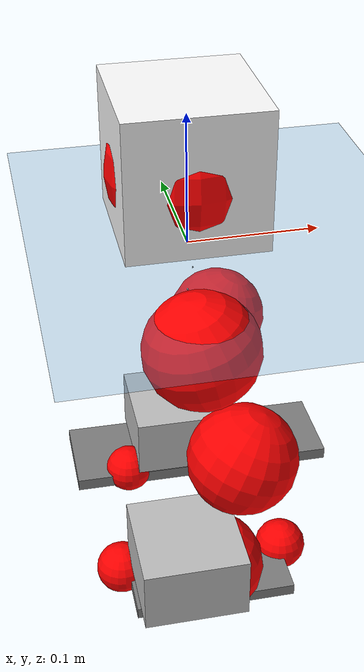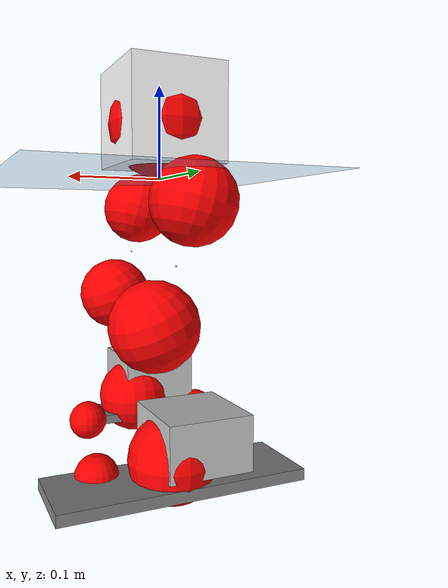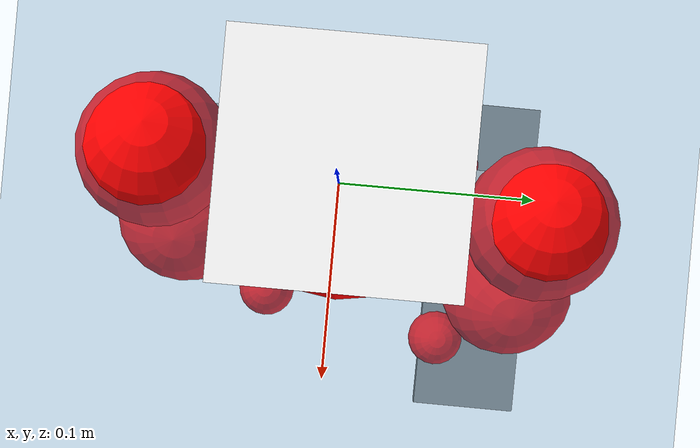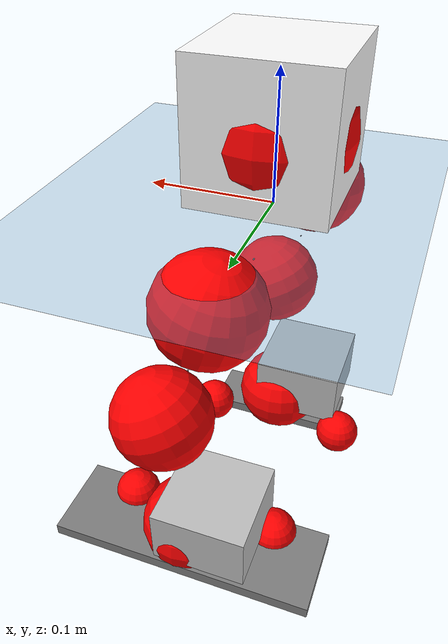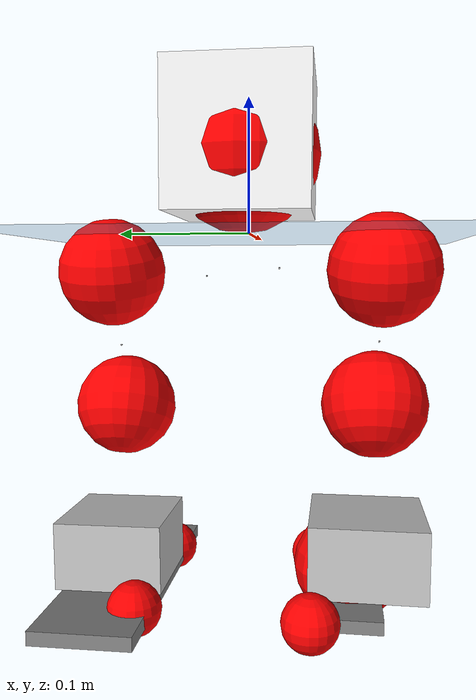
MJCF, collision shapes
<mujoco model="pi_12dof_release_v1">
  <compiler angle="radian" assetdir="assets" balanceinertia="true" inertiafromgeom="false"/>

  <option timestep="0.005" density="1.2" viscosity="2e-05"/>

  <size nkey="1"/>

  <visual>
    <quality shadowsize="8192"/>
    <map shadowclip="0.5"/>
  </visual>

  <default>
    <default class="/">
      <joint armature="0.01" damping="0.01" frictionloss="0.01"/>
      <geom contype="0" conaffinity="0" group="1" solref="-1000 -80"/>
      <site size="0.01 0.005 0.005" group="5"/>
      <general forcelimited="true" biastype="affine" gainprm="20" biasprm="0 -20 -0.5"/>
      <default class="foot">
        <geom size="0.0845 0.036 0.005" type="box" condim="6" group="4" priority="1" friction="0.9 0.2 0.2" solimp="0.015 1 0.005"/>
      </default>
      <default class="reward_collision_sphere">
        <geom group="5" rgba="1 0 0 1"/>
      </default>
    </default>
  </default>

  <asset>
    <texture type="skybox" colorspace="auto" name="//unnamed_texture_0" builtin="gradient" rgb1="0.95 0.95 0.95" rgb2="0.95 0.95 0.95" width="100" height="600"/>
    <texture type="2d" colorspace="auto" name="texplane" builtin="checker" rgb1="0.345 0.575 0.748" rgb2="0.345 0.575 0.748" markrgb="1 1 1" width="512" height="512"/>
    <material name="MatPlane" class="/" texture="texplane" texuniform="true" texrepeat="2 2" specular="0.9"/>
    <mesh name="baselink_1" class="/" file="baselink_1.STL"/>
    <mesh name="r_hip_pitch_link" class="/" file="r_hip_pitch_link.STL"/>
    <mesh name="r_hip_roll_link" class="/" file="r_hip_roll_link.STL"/>
    <mesh name="r_thigh_link" class="/" file="r_thigh_link.STL"/>
    <mesh name="r_calf_link" class="/" file="r_calf_link.STL"/>
    <mesh name="r_ankle_pitch_link" class="/" file="r_ankle_pitch_link.STL"/>
    <mesh name="r_ankle_roll_link" class="/" file="r_ankle_roll_link.STL"/>
    <mesh name="l_hip_pitch_link" class="/" file="l_hip_pitch_link.STL"/>
    <mesh name="l_hip_roll_link" class="/" file="l_hip_roll_link.STL"/>
    <mesh name="l_thigh_link" class="/" file="l_thigh_link.STL"/>
    <mesh name="l_calf_link" class="/" file="l_calf_link.STL"/>
    <mesh name="l_ankle_pitch_link" class="/" file="l_ankle_pitch_link.STL"/>
    <mesh name="l_ankle_roll_link" class="/" file="l_ankle_roll_link.STL"/>
  </asset>

  <worldbody>
    <geom name="floor" class="/" size="100 100 0.125" type="plane" group="0" material="MatPlane"/>
    <light name="toplight_shadow" class="/" pos="0 0 5" dir="0.0990148 0.0990148 -0.990148" type="directional" ambient="0.04 0.04 0.04" diffuse="0.55 0.55 0.55" specular="0.12 0.12 0.12"/>
    <light name="toplight_fill" class="/" pos="0 0 5" dir="0.0990148 0.0990148 -0.990148" type="directional" castshadow="false" ambient="0.04 0.04 0.04" diffuse="0.3 0.3 0.3" specular="0.08 0.08 0.08"/>
    <body name="trunk" pos="-0.00130262 0.00403288 -2.16506e-05" quat="0.999998 0.00161347 0.000844041 -0.000932198">
      <inertial pos="0.0053131 0.00856374 0.0287859" quat="0.699978 0.00606834 -0.00178187 0.714136" mass="2.5634" diaginertia="0.0121059 0.0395041 0.00158852"/>
      <joint name="//unnamed_joint_0" type="free"/>
      <geom name="//unnamed_geom_1" class="/" type="mesh" density="0" rgba="1 1 1 1" mesh="baselink_1"/>
      <geom name="//unnamed_geom_2" class="/" size="0.0523546 0.0523546 0.0523546" pos="0 0 0.0656721" type="box" rgba="1 1 1 1"/>
      <geom name="//unnamed_geom_3" class="reward_collision_sphere" size="0.05759" pos="0 0 0.0574631"/>
      <site name="imu" class="/" pos="-0.00993572 0.00999015 0.00997808" size="0.0104709"/>
      <camera name="track" class="/" pos="0 -2.63761 0" quat="0.707107 0.707107 0 0" mode="trackcom"/>
      <camera name="ego_camera" class="/" pos="0.0751178 0 0.147762" quat="-0.5 -0.5 0.5 0.5"/>
      <body name="r_hip_pitch_link" pos="-0.00341447 -0.0277634 -0.0259878" quat="0.9922 2.00389e-05 -0.124659 0.000102228">
        <inertial pos="0.00232881 -0.0669325 0.00396532" quat="-0.0595513 0.725012 -0.0353745 0.685245" mass="0.43967" diaginertia="0.000108162 0.000405237 3.06493e-05"/>
        <joint name="r_hip_pitch_joint" class="/" pos="0 0 0" axis="-0.00987471 -0.999946 -0.00325181" range="-1.81824 1.19252" armature="0.00931872" damping="0" frictionloss="0.00630178"/>
        <geom name="//unnamed_geom_4" class="/" type="mesh" density="0" rgba="0.75294 0.75294 0.75294 1" mesh="r_hip_pitch_link"/>
        <geom name="//unnamed_geom_5" class="/" size="0.000523546 0.000523546 0.000523546" type="box" rgba="0.75294 0.75294 0.75294 1"/>
        <body name="r_hip_roll_link" pos="-0.00647469 -0.076992 0.000449816" quat="0.999989 -0.00410931 -0.000208633 -0.00221615">
          <inertial pos="0.000716203 -0.00958133 -0.0524547" quat="0.708574 -0.0820964 -0.0821557 0.696012" mass="0.43746" diaginertia="0.000370551 0.0010003 4.86714e-05"/>
          <joint name="r_hip_roll_joint" class="/" pos="0 0 0" axis="-0.999935 0.00698673 -0.0090287" stiffness="0.0115281" range="-0.102097 0.465557" armature="0.00728481" damping="0" frictionloss="0.00942299"/>
          <geom name="//unnamed_geom_6" class="/" type="mesh" density="0" rgba="0.75294 0.75294 0.75294 1" mesh="r_hip_roll_link"/>
          <geom name="//unnamed_geom_7" class="/" size="0.000523546 0.000523546 0.000523546" type="box" rgba="0.75294 0.75294 0.75294 1"/>
          <geom name="//unnamed_geom_8" class="reward_collision_sphere" size="0.0418837"/>
          <body name="r_thigh_link" pos="-0.00356058 0.00257003 -0.0539002" quat="0.999999 0.00104238 -7.57523e-05 -0.00127553">
            <inertial pos="0.00731896 0.00519098 -0.0333136" quat="0.736218 0.676741 -0.0016608 0.0013297" mass="0.134599" diaginertia="0.000130545 0.000356037 2.19961e-05"/>
            <joint name="r_thigh_joint" class="/" pos="0 0 0" axis="-0.0309938 0.0125878 -0.99944" stiffness="0.038807" range="-0.128583 0.766832" armature="0.00694931" damping="0.0521478" frictionloss="0.00606321"/>
            <geom name="//unnamed_geom_9" class="/" type="mesh" density="0" rgba="0.75294 0.75294 0.75294 1" mesh="r_thigh_link"/>
            <geom name="//unnamed_geom_10" class="/" size="0.000523546 0.000523546 0.000523546" type="box" rgba="0.75294 0.75294 0.75294 1"/>
            <body name="r_calf_link" pos="0.00887961 0.00143572 -0.0551187" quat="0.947563 -0.000238506 0.31957 0.00028233">
              <inertial pos="-0.00265877 -0.00232462 -0.0554805" quat="0.999498 0.00809784 -0.0100157 -0.0289488" mass="0.960412" diaginertia="0.00381785 0.0139464 6.59048e-05"/>
              <joint name="r_calf_joint" class="/" pos="0 0 0" axis="-0.04768 -0.998858 -0.0031921" stiffness="0.0127332" range="-1.60172 0.618005" armature="0.00976797" damping="0.00867814" frictionloss="0.00650654"/>
              <geom name="//unnamed_geom_11" class="/" type="mesh" density="0" rgba="0.75294 0.75294 0.75294 1" mesh="r_calf_link"/>
              <geom name="//unnamed_geom_12" class="/" size="0.000523546 0.000523546 0.000523546" type="box" rgba="0.75294 0.75294 0.75294 1"/>
              <geom name="//unnamed_geom_13" class="reward_collision_sphere" size="0.0418837"/>
              <body name="r_ankle_pitch_link" pos="0.00100156 0.00628037 -0.108218" quat="0.97999 0.000104737 -0.199046 0.00021386">
                <inertial pos="0.00242442 0.00838069 -0.00783196" quat="0.0036624 0.705826 -0.00130083 0.708375" mass="0.203535" diaginertia="0.000327288 0.000886965 4.47588e-05"/>
                <joint name="r_ankle_pitch_joint" class="/" pos="0 0 0" axis="0.00394443 -0.999985 -0.00370579" stiffness="0.00385919" range="-1.21544 0.657154" armature="0.0074296" damping="0.0131145" frictionloss="0.00674199"/>
                <geom name="//unnamed_geom_14" class="/" type="mesh" density="0" rgba="0.75294 0.75294 0.75294 1" mesh="r_ankle_pitch_link"/>
                <geom name="//unnamed_geom_15" class="/" size="0.0408366 0.0418837 0.0261773" type="box" rgba="0.75294 0.75294 0.75294 1"/>
                <body name="r_ankle_roll_link" pos="0.0733982 0.0129465 -0.00729775" quat="1 -0.000204687 0.000369964 -6.76354e-05">
                  <inertial pos="-0.0205033 -0.00358096 -0.00996641" quat="0.56438 0.431056 0.430577 0.557018" mass="0.52931" diaginertia="0.00102088 0.00343792 9.73332e-05"/>
                  <joint name="r_ankle_roll_joint" class="/" pos="0 0 0" axis="-0.998691 -0.0456242 -0.0231416" range="-0.337554 0.0378523" armature="0.00929891" damping="0" frictionloss="0.0104511"/>
                  <geom name="//unnamed_geom_16" class="/" type="mesh" density="0" rgba="0.75294 0.75294 0.75294 1" mesh="r_ankle_roll_link"/>
                  <geom name="//unnamed_geom_17" class="/" type="mesh" rgba="0.75294 0.75294 0.75294 1" mesh="r_ankle_roll_link"/>
                  <geom name="right_foot" class="foot" size="0.0645575 0.0244244 0.00481911" pos="-0.0510801 0 -0.0361196"/>
                  <geom name="//unnamed_geom_19" class="reward_collision_sphere" size="0.0418837" pos="-0.0500785 0 -0.016418"/>
                  <geom name="//unnamed_geom_20" class="reward_collision_sphere" size="0.0209418" pos="0.0150236 0.0263761 -0.032836"/>
                  <geom name="//unnamed_geom_21" class="reward_collision_sphere" size="0.0209418" pos="-0.120188 0.0263761 -0.032836"/>
                  <site name="right_foot" class="foot" pos="-0.0510801 0 -0.0361196" size="0.0104709"/>
                </body>
              </body>
            </body>
          </body>
        </body>
      </body>
      <body name="l_hip_pitch_link" pos="0.00514276 0.0288936 -0.0319432" quat="0.992334 0.000599161 -0.123584 -2.91176e-05">
        <inertial pos="0.0023656 0.0704299 -0.0035022" quat="-0.0392361 0.705154 0.0339108 0.707155" mass="0.505965" diaginertia="0.000128705 0.000434944 3.66038e-05"/>
        <joint name="l_hip_pitch_joint" class="/" pos="0 0 0" axis="-0.00180225 0.999998 0.000293385" range="-1.19833 1.61891" armature="0.00986331" damping="0.0277206" frictionloss="0.0100041"/>
        <geom name="//unnamed_geom_22" class="/" type="mesh" density="0" rgba="0.75294 0.75294 0.75294 1" mesh="l_hip_pitch_link"/>
        <geom name="//unnamed_geom_23" class="/" size="0.000523546 0.000523546 0.000523546" type="box" rgba="0.75294 0.75294 0.75294 1"/>
        <body name="l_hip_roll_link" pos="0.00695283 0.0769128 0.000862945" quat="0.999992 -0.0028181 0.00122805 0.0024453">
          <inertial pos="0.00326823 -0.00965461 -0.050568" quat="0.699312 -0.0628313 -0.100994 0.704851" mass="0.498801" diaginertia="0.000349729 0.00107637 4.40342e-05"/>
          <joint name="l_hip_roll_joint" class="/" pos="0 0 0" axis="-0.99975 -0.00661688 0.0213465" range="-0.528671 0.10505" armature="0.00585462" damping="0.0071482" frictionloss="0.0119113"/>
          <geom name="//unnamed_geom_24" class="/" type="mesh" density="0" rgba="0.75294 0.75294 0.75294 1" mesh="l_hip_roll_link"/>
          <geom name="//unnamed_geom_25" class="/" size="0.000523546 0.000523546 0.000523546" type="box" rgba="0.75294 0.75294 0.75294 1"/>
          <geom name="//unnamed_geom_26" class="reward_collision_sphere" size="0.0418837"/>
          <body name="l_thigh_link" pos="0.0023287 -0.00118208 -0.0614317" quat="0.999999 -0.0012746 0.000327158 -0.000146008">
            <inertial pos="0.00251859 -0.00759845 -0.0424504" quat="0.675079 0.737676 0.0101163 -0.000640332" mass="0.131802" diaginertia="0.000135842 0.000408398 2.35098e-05"/>
            <joint name="l_thigh_joint" class="/" pos="0 0 0" axis="0.00243437 0.00320027 -0.999992" range="-0.608517 0.303249" armature="0.01199" damping="0.0379077" frictionloss="0.0103739"/>
            <geom name="//unnamed_geom_27" class="/" type="mesh" density="0" rgba="0.75294 0.75294 0.75294 1" mesh="l_thigh_link"/>
            <geom name="//unnamed_geom_28" class="/" size="0.000523546 0.000523546 0.000523546" type="box" rgba="0.75294 0.75294 0.75294 1"/>
            <body name="l_calf_link" pos="0.00898814 0.00300352 -0.0572601" quat="0.947452 -0.00206745 0.319862 -0.0043841">
              <inertial pos="0.00276131 0.004724 -0.0604771" quat="0.999955 0.00801897 0.00121543 0.00489516" mass="0.96613" diaginertia="0.00362589 0.0143382 5.84737e-05"/>
              <joint name="l_calf_joint" class="/" pos="0 0 0" axis="0.0126382 0.999894 0.00728319" stiffness="0.0461832" range="-0.77892 1.6616" armature="0.0111788" damping="0.0150921" frictionloss="0.0106421"/>
              <geom name="//unnamed_geom_29" class="/" type="mesh" density="0" rgba="0.75294 0.75294 0.75294 1" mesh="l_calf_link"/>
              <geom name="//unnamed_geom_30" class="/" size="0.000523546 0.000523546 0.000523546" type="box" rgba="0.75294 0.75294 0.75294 1"/>
              <geom name="//unnamed_geom_31" class="reward_collision_sphere" size="0.0418837"/>
              <body name="l_ankle_pitch_link" pos="0.00437492 -0.00529686 -0.11394" quat="0.980088 0.000136202 -0.198562 0.000503705">
                <inertial pos="0.00469097 0.00397336 -0.00294873" quat="0.00301342 0.708519 0.00840887 0.705635" mass="0.204609" diaginertia="0.000305971 0.000892365 4.73623e-05"/>
                <joint name="l_ankle_pitch_joint" class="/" pos="0 0 0" axis="0.0081497 0.99995 0.00586436" range="-0.554269 1.28093" armature="0.0139109" damping="0" frictionloss="0.0122827"/>
                <geom name="//unnamed_geom_32" class="/" type="mesh" density="0" rgba="0.75294 0.75294 0.75294 1" mesh="l_ankle_pitch_link"/>
                <geom name="//unnamed_geom_33" class="/" size="0.0408366 0.0418837 0.0261773" type="box" rgba="0.75294 0.75294 0.75294 1"/>
                <body name="l_ankle_roll_link" pos="0.072451 0.00309144 -0.00184271" quat="1 0.000503031 -0.000106674 -0.000391247">
                  <inertial pos="-0.0211859 0.0011331 -0.0151012" quat="0.561138 0.428599 0.433207 0.560142" mass="0.561997" diaginertia="0.00113752 0.00398667 0.000102304"/>
                  <joint name="l_ankle_roll_joint" class="/" pos="0 0 0" axis="-0.999982 -0.00484211 -0.00356969" stiffness="0.00358381" range="-0.329329 0.178987" armature="0.00966464" damping="0.0473701" frictionloss="0.0107962"/>
                  <geom name="//unnamed_geom_34" class="/" type="mesh" density="0" rgba="0.75294 0.75294 0.75294 1" mesh="l_ankle_roll_link"/>
                  <geom name="//unnamed_geom_35" class="/" type="mesh" rgba="0.75294 0.75294 0.75294 1" mesh="l_ankle_roll_link"/>
                  <geom name="left_foot" class="foot" size="0.117735 0.0383685 0.00538073" pos="-0.0510801 0 -0.0361196"/>
                  <geom name="//unnamed_geom_37" class="reward_collision_sphere" size="0.0418837" pos="-0.0500785 0 -0.016418"/>
                  <geom name="//unnamed_geom_38" class="reward_collision_sphere" size="0.0209418" pos="0.0150236 -0.0263761 -0.032836"/>
                  <geom name="//unnamed_geom_39" class="reward_collision_sphere" size="0.0209418" pos="-0.120188 -0.0263761 -0.032836"/>
                  <site name="left_foot" class="foot" pos="-0.0510801 0 -0.0361196" size="0.0104709"/>
                </body>
              </body>
            </body>
          </body>
        </body>
      </body>
    </body>
  </worldbody>

  <contact>
    <pair class="/" geom1="floor" geom2="right_foot" name="//unnamed_contact_1"/>
    <pair class="/" geom1="floor" geom2="left_foot" name="//unnamed_contact_0"/>
  </contact>

  <actuator>
    <general name="r_hip_pitch_joint" class="/" joint="r_hip_pitch_joint" forcerange="-22.9468 22.9468" gainprm="21.8989" biasprm="0 -21.8989 -0.535598"/>
    <general name="r_hip_roll_joint" class="/" joint="r_hip_roll_joint" forcerange="-14.4034 14.4034" gainprm="21.8989" biasprm="0 -21.8989 -0.535598"/>
    <general name="r_thigh_joint" class="/" joint="r_thigh_joint" forcerange="-22.0784 22.0784" gainprm="21.8989" biasprm="0 -21.8989 -0.535598"/>
    <general name="r_calf_joint" class="/" joint="r_calf_joint" forcerange="-23.5442 23.5442" gainprm="21.8989" biasprm="0 -21.8989 -0.535598"/>
    <general name="r_ankle_pitch_joint" class="/" joint="r_ankle_pitch_joint" forcerange="-21.7747 21.7747" gainprm="21.8989" biasprm="0 -21.8989 -0.535598"/>
    <general name="r_ankle_roll_joint" class="/" joint="r_ankle_roll_joint" forcerange="-17.6129 17.6129" gainprm="21.8989" biasprm="0 -21.8989 -0.535598"/>
    <general name="l_hip_pitch_joint" class="/" joint="l_hip_pitch_joint" forcerange="-20.6114 20.6114" gainprm="21.8989" biasprm="0 -21.8989 -0.535598"/>
    <general name="l_hip_roll_joint" class="/" joint="l_hip_roll_joint" forcerange="-21.7557 21.7557" gainprm="21.8989" biasprm="0 -21.8989 -0.535598"/>
    <general name="l_thigh_joint" class="/" joint="l_thigh_joint" forcerange="-23.4952 23.4952" gainprm="21.8989" biasprm="0 -21.8989 -0.535598"/>
    <general name="l_calf_joint" class="/" joint="l_calf_joint" forcerange="-23.8447 23.8447" gainprm="21.8989" biasprm="0 -21.8989 -0.535598"/>
    <general name="l_ankle_pitch_joint" class="/" joint="l_ankle_pitch_joint" forcerange="-20.4127 20.4127" gainprm="21.8989" biasprm="0 -21.8989 -0.535598"/>
    <general name="l_ankle_roll_joint" class="/" joint="l_ankle_roll_joint" forcerange="-25.967 25.967" gainprm="21.8989" biasprm="0 -21.8989 -0.535598"/>
  </actuator>

  <sensor>
    <gyro site="imu" name="imu_angular_velocity"/>
    <velocimeter site="imu" name="imu_linear_velocity"/>
    <framelinvel objtype="site" objname="left_foot" name="left_foot_global_linear_velocity"/>
    <framelinvel objtype="site" objname="right_foot" name="right_foot_global_linear_velocity"/>
  </sensor>

  <keyframe>
    <key name="home" qpos="0 0 0.291 1 0 0 0 0.4 0 0 -0.8 0.4 0 -0.4 0 0 0.8 -0.4 0"/>
  </keyframe>
</mujoco>
